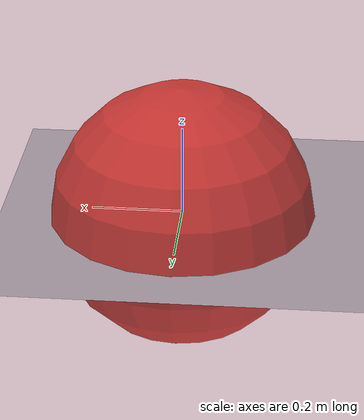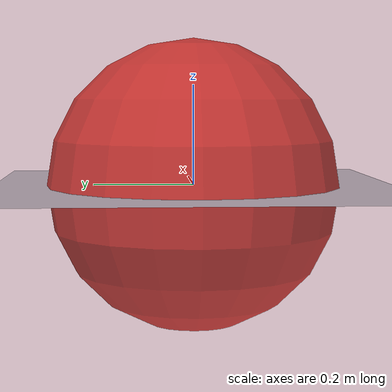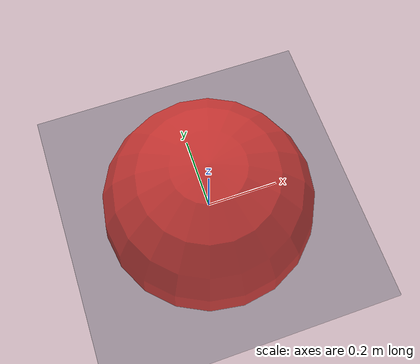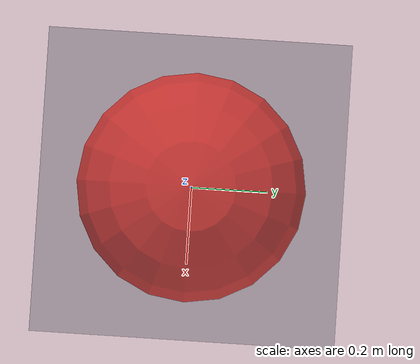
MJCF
<mujoco model="cf21B motor-off contact continuation"><compiler angle="radian" inertiafromgeom="false" /><option timestep="0.001" gravity="0 0 -9.8100000000000005" integrator="implicitfast" solver="Newton" iterations="100" tolerance="1e-10" /><default><geom condim="6" friction="0.69999999999999996 0.01 0.001" solref="0.006 1" solimp="0.95 0.99 0.001" margin="0" /></default><worldbody><light pos="0 0 5" dir="0 0 -1" /><geom name="ground" type="plane" size="20 20 0.1" pos="0 0 0.0" rgba="0.18 0.23 0.29 1" contype="2" conaffinity="1" /><body name="drone"><freejoint name="drone_free" align="false" /><inertial pos="0 0 0" mass="0.043379999697208405" fullinertia="2.4999999368446879e-05 2.8000000384054147e-05 4.8999998398358002e-05 0 0 0" /><geom name="drone_collider" type="sphere" size="0.086" pos="0 0 0.02" rgba="0.15 0.7 0.95 0.45" contype="1" conaffinity="2" /></body><body name="obstacle_0" gravcomp="1"><freejoint name="obstacle_free_0" align="false" /><inertial pos="0 0 0" mass="1000.0" diaginertia="34.334870701090296 34.334870701090296 34.334870701090296" /><geom name="obstacle_geom_0" type="sphere" size="0.2929798231153909" rgba="0.8 0.12 0.1 0.8" contype="2" conaffinity="1" /></body><body name="obstacle_1" gravcomp="1"><freejoint name="obstacle_free_1" align="false" /><inertial pos="0 0 0" mass="1000.0" diaginertia="29.779197752550225 29.779197752550225 29.779197752550225" /><geom name="obstacle_geom_1" type="sphere" size="0.272851597725532" rgba="0.8 0.12 0.1 0.8" contype="2" conaffinity="1" /></body><body name="obstacle_2" gravcomp="1"><freejoint name="obstacle_free_2" align="false" /><inertial pos="0 0 0" mass="1000.0" diaginertia="28.469872303767989 28.469872303767989 28.469872303767989" /><geom name="obstacle_geom_2" type="sphere" size="0.2667858331310341" rgba="0.8 0.12 0.1 0.8" contype="2" conaffinity="1" /></body><body name="obstacle_3" gravcomp="1"><freejoint name="obstacle_free_3" align="false" /><inertial pos="0 0 0" mass="1000.0" diaginertia="24.73923569484856 24.73923569484856 24.73923569484856" /><geom name="obstacle_geom_3" type="sphere" size="0.24869276072519964" rgba="0.8 0.12 0.1 0.8" contype="2" conaffinity="1" /></body><body name="obstacle_4" gravcomp="1"><freejoint name="obstacle_free_4" align="false" /><inertial pos="0 0 0" mass="1000.0" diaginertia="29.20503448289465 29.20503448289465 29.20503448289465" /><geom name="obstacle_geom_4" type="sphere" size="0.27020841253972205" rgba="0.8 0.12 0.1 0.8" contype="2" conaffinity="1" /></body><body name="obstacle_5" gravcomp="1"><freejoint name="obstacle_free_5" align="false" /><inertial pos="0 0 0" mass="1000.0" diaginertia="32.546389763471808 32.546389763471808 32.546389763471808" /><geom name="obstacle_geom_5" type="sphere" size="0.28524721630312105" rgba="0.8 0.12 0.1 0.8" contype="2" conaffinity="1" /></body><body name="obstacle_6" gravcomp="1"><freejoint name="obstacle_free_6" align="false" /><inertial pos="0 0 0" mass="1000.0" diaginertia="23.258328949717828 23.258328949717828 23.258328949717828" /><geom name="obstacle_geom_6" type="sphere" size="0.24113444875068052" rgba="0.8 0.12 0.1 0.8" contype="2" conaffinity="1" /></body><body name="obstacle_7" gravcomp="1"><freejoint name="obstacle_free_7" align="false" /><inertial pos="0 0 0" mass="1000.0" diaginertia="27.493153142367195 27.493153142367195 27.493153142367195" /><geom name="obstacle_geom_7" type="sphere" size="0.2621695688975324" rgba="0.8 0.12 0.1 0.8" contype="2" conaffinity="1" /></body><body name="obstacle_8" gravcomp="1"><freejoint name="obstacle_free_8" align="false" /><inertial pos="0 0 0" mass="1000.0" diaginertia="30.527349162918522 30.527349162918522 30.527349162918522" /><geom name="obstacle_geom_8" type="sphere" size="0.27625780153200435" rgba="0.8 0.12 0.1 0.8" contype="2" conaffinity="1" /></body><body name="obstacle_9" gravcomp="1"><freejoint name="obstacle_free_9" align="false" /><inertial pos="0 0 0" mass="1000.0" diaginertia="25.233097402162212 25.233097402162212 25.233097402162212" /><geom name="obstacle_geom_9" type="sphere" size="0.25116278288274624" rgba="0.8 0.12 0.1 0.8" contype="2" conaffinity="1" /></body><body name="obstacle_10" gravcomp="1"><freejoint name="obstacle_free_10" align="false" /><inertial pos="0 0 0" mass="1000.0" diaginertia="21.690035766416685 21.690035766416685 21.690035766416685" /><geom name="obstacle_geom_10" type="sphere" size="0.23286281243694046" rgba="0.8 0.12 0.1 0.8" contype="2" conaffinity="1" /></body><body name="obstacle_11" gravcomp="1"><freejoint name="obstacle_free_11" align="false" /><inertial pos="0 0 0" mass="1000.0" diaginertia="31.228465658233123 31.228465658233123 31.228465658233123" /><geom name="obstacle_geom_11" type="sphere" size="0.27941217608683916" rgba="0.8 0.12 0.1 0.8" contype="2" conaffinity="1" /></body><body name="obstacle_12" gravcomp="1"><freejoint name="obstacle_free_12" align="false" /><inertial pos="0 0 0" mass="1000.0" diaginertia="17.071734156664263 17.071734156664263 17.071734156664263" /><geom name="obstacle_geom_12" type="sphere" size="0.2065897756222719" rgba="0.8 0.12 0.1 0.8" contype="2" conaffinity="1" /></body><body name="obstacle_13" gravcomp="1"><freejoint name="obstacle_free_13" align="false" /><inertial pos="0 0 0" mass="1000.0" diaginertia="30.188274111166574 30.188274111166574 30.188274111166574" /><geom name="obstacle_geom_13" type="sphere" size="0.27471928450313865" rgba="0.8 0.12 0.1 0.8" contype="2" conaffinity="1" /></body><body name="obstacle_14" gravcomp="1"><freejoint name="obstacle_free_14" align="false" /><inertial pos="0 0 0" mass="1000.0" diaginertia="19.919962436846898 19.919962436846898 19.919962436846898" /><geom name="obstacle_geom_14" type="sphere" size="0.22315892563847237" rgba="0.8 0.12 0.1 0.8" contype="2" conaffinity="1" /></body><body name="obstacle_15" gravcomp="1"><freejoint name="obstacle_free_15" align="false" /><inertial pos="0 0 0" mass="1000.0" diaginertia="24.479186479170341 24.479186479170341 24.479186479170341" /><geom name="obstacle_geom_15" type="sphere" size="0.24738222692409786" rgba="0.8 0.12 0.1 0.8" contype="2" conaffinity="1" /></body></worldbody></mujoco>
